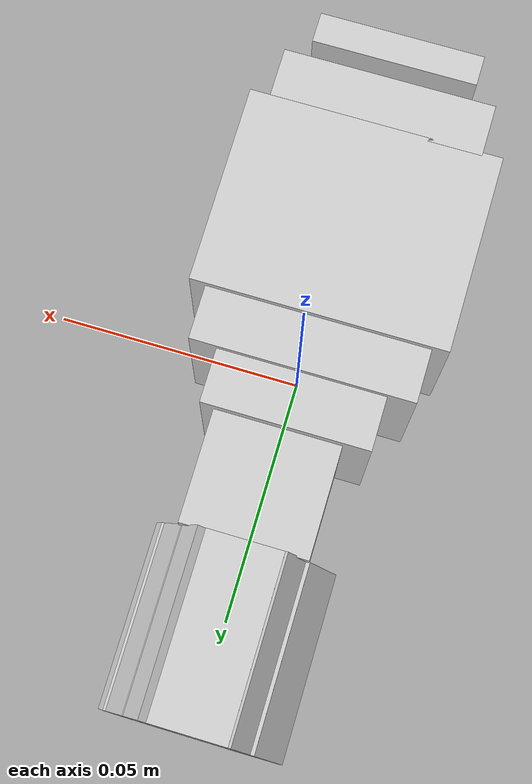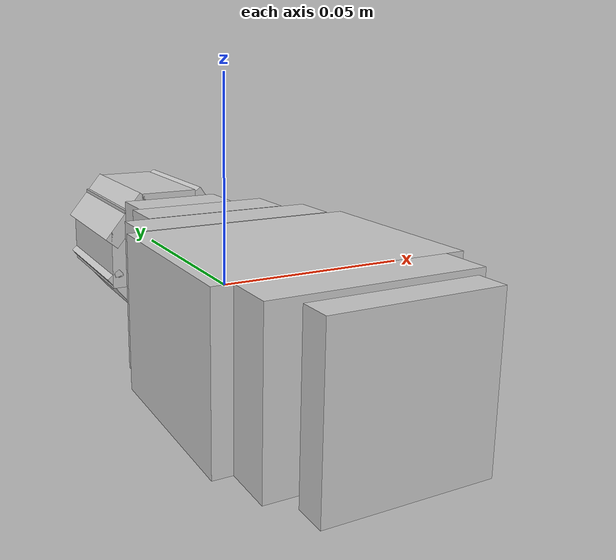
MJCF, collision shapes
<mujoco model="textured">
  <compiler meshdir="F:/--CodeRepo/--CodeRepo/Research/___Mujoco/mujoco/mujoco/icse27/mujoco_rl_fuzz_2.0/.cache/repos/libero/libero/libero/assets/stable_hope_objects/salad_dressing" texturedir="F:/--CodeRepo/--CodeRepo/Research/___Mujoco/mujoco/mujoco/icse27/mujoco_rl_fuzz_2.0/.cache/repos/libero/libero/libero/assets/stable_hope_objects/salad_dressing" assetdir="F:/--CodeRepo/--CodeRepo/Research/___Mujoco/mujoco/mujoco/icse27/mujoco_rl_fuzz_2.0/.cache/repos/libero/libero/libero/assets/stable_hope_objects/salad_dressing"/><asset>
  <texture file="texture_map.png" name="tex-textured" type="2d"/>
  <material name="textured" reflectance="0.5" texrepeat="1 1" texture="tex-textured" texuniform="false"/>
  <mesh file="visual/textured_vis.msh" name="textured_vis" scale="0.01 0.01 0.01"/></asset>
  <worldbody>
    <body>
      <body name="object">
      <geom solimp="0.998 0.998 0.001" solref="0.001 1" density="100" friction="0.95 0.3 0.1" type="mesh" mesh="textured_vis" conaffinity="0" contype="0" group="1" material="textured"/><geom solimp="0.998 0.998 0.001" solref="0.001 1" density="100" friction="0.95 0.3 0.1" type="box" pos="0.00012 0.05420 0.00043" quat="0.50000 0.50000 0.50000 -0.50000" size="0.01237 0.01277 0.01865" group="0" rgba="0.8 0.8 0.8 0.3"/><geom solimp="0.998 0.998 0.001" solref="0.001 1" density="100" friction="0.95 0.3 0.1" type="box" pos="-0.00096 -0.03138 0.00023" quat="0.70711 -0.00000 -0.70711 -0.00000" size="0.01733 0.02097 0.02637" group="0" rgba="0.8 0.8 0.8 0.3"/><geom solimp="0.998 0.998 0.001" solref="0.001 1" density="100" friction="0.95 0.3 0.1" type="box" pos="0.00048 0.00843 0.00023" quat="0.70711 0.70711 0.00000 -0.00000" size="0.01294 0.01494 0.02738" group="0" rgba="0.8 0.8 0.8 0.3"/><geom solimp="0.998 0.998 0.001" solref="0.001 1" density="100" friction="0.95 0.3 0.1" type="box" pos="0.00012 0.05420 -0.01366" quat="0.50000 -0.50000 0.50000 0.50000" size="0.00208 0.00780 0.01865" group="0" rgba="0.8 0.8 0.8 0.3"/><geom solimp="0.998 0.998 0.001" solref="0.001 1" density="100" friction="0.95 0.3 0.1" type="box" pos="0.00012 0.05420 0.01479" quat="0.50000 -0.50000 0.50000 0.50000" size="0.00208 0.00780 0.01865" group="0" rgba="0.8 0.8 0.8 0.3"/><geom solimp="0.998 0.998 0.001" solref="0.001 1" density="100" friction="0.95 0.3 0.1" type="box" pos="0.01509 0.05420 -0.00068" quat="0.70711 0.70711 0.00086 -0.00086" size="0.00208 0.00780 0.01865" group="0" rgba="0.8 0.8 0.8 0.3"/><geom solimp="0.998 0.998 0.001" solref="0.001 1" density="100" friction="0.95 0.3 0.1" type="box" pos="-0.01447 0.05420 -0.00068" quat="0.70711 0.70711 0.00086 -0.00086" size="0.00208 0.00780 0.01865" group="0" rgba="0.8 0.8 0.8 0.3"/><geom solimp="0.998 0.998 0.001" solref="0.001 1" density="100" friction="0.95 0.3 0.1" type="box" pos="-0.01145 0.05420 -0.01062" quat="0.23994 0.23994 0.66515 -0.66515" size="0.00208 0.00780 0.01865" group="0" rgba="0.8 0.8 0.8 0.3"/><geom solimp="0.998 0.998 0.001" solref="0.001 1" density="100" friction="0.95 0.3 0.1" type="box" pos="0.01182 0.05420 -0.01062" quat="0.66388 0.66388 0.24343 -0.24343" size="0.00208 0.00780 0.01865" group="0" rgba="0.8 0.8 0.8 0.3"/><geom solimp="0.998 0.998 0.001" solref="0.001 1" density="100" friction="0.95 0.3 0.1" type="box" pos="0.01220 0.05420 0.00988" quat="0.21187 0.21187 0.67462 -0.67462" size="0.00208 0.00780 0.01865" group="0" rgba="0.8 0.8 0.8 0.3"/><geom solimp="0.998 0.998 0.001" solref="0.001 1" density="100" friction="0.95 0.3 0.1" type="box" pos="-0.01158 0.05420 0.00988" quat="0.66557 -0.66557 0.23877 0.23877" size="0.00208 0.00780 0.01865" group="0" rgba="0.8 0.8 0.8 0.3"/><geom solimp="0.998 0.998 0.001" solref="0.001 1" density="100" friction="0.95 0.3 0.1" type="box" pos="-0.00096 -0.06947 0.00023" quat="0.00000 -0.70711 0.70711 -0.00000" size="0.00325 0.01729 0.01733" group="0" rgba="0.8 0.8 0.8 0.3"/><geom solimp="0.998 0.998 0.001" solref="0.001 1" density="100" friction="0.95 0.3 0.1" type="box" pos="-0.00096 -0.05722 0.00023" quat="0.50000 0.50000 -0.50000 -0.50000" size="0.00558 0.01733 0.02217" group="0" rgba="0.8 0.8 0.8 0.3"/><geom solimp="0.998 0.998 0.001" solref="0.001 1" density="100" friction="0.95 0.3 0.1" type="box" pos="-0.00096 -0.00434 0.00023" quat="0.50000 0.50000 -0.50000 -0.50000" size="0.00558 0.01733 0.02290" group="0" rgba="0.8 0.8 0.8 0.3"/><geom solimp="0.998 0.998 0.001" solref="0.001 1" density="100" friction="0.95 0.3 0.1" type="box" pos="-0.00096 0.00719 0.00023" quat="0.70711 -0.00000 -0.00000 -0.70711" size="0.00558 0.01712 0.01733" group="0" rgba="0.8 0.8 0.8 0.3"/></body>
      <site rgba="0 0 0 0" size="0.005" pos="0 0 -0.06" name="bottom_site"/>
      <site rgba="0 0 0 0" size="0.005" pos="0 0 0.04" name="top_site"/>
      <site rgba="0 0 0 0" size="0.005" pos="0.025 0.025 0" name="horizontal_radius_site"/>
    </body>
  </worldbody>
</mujoco>
